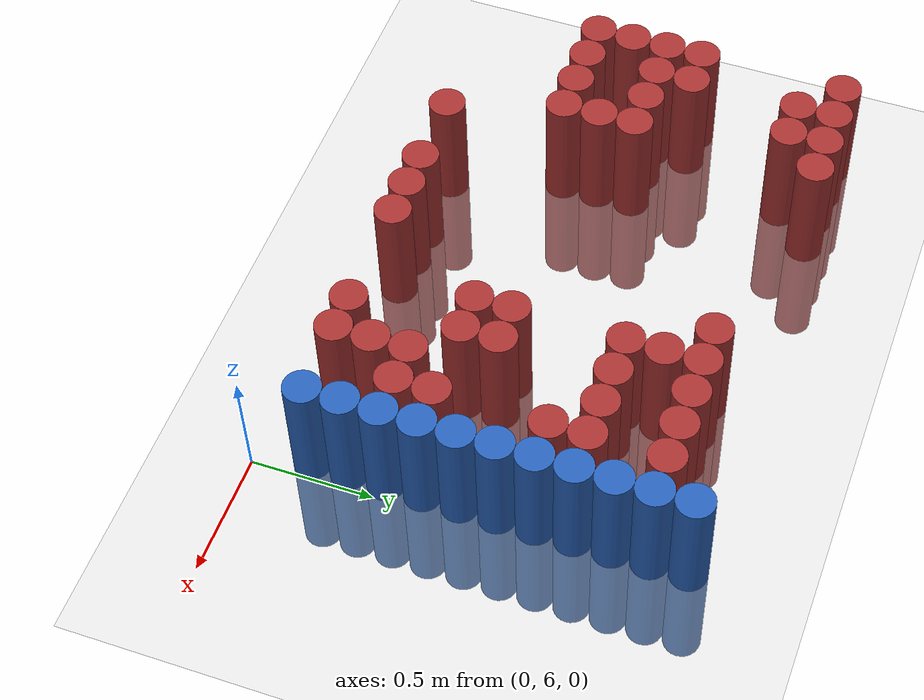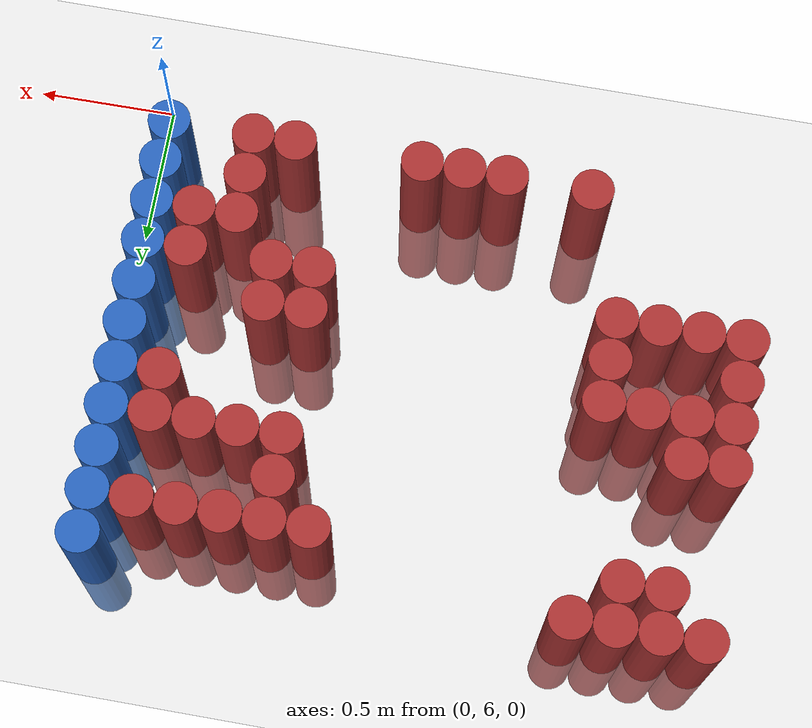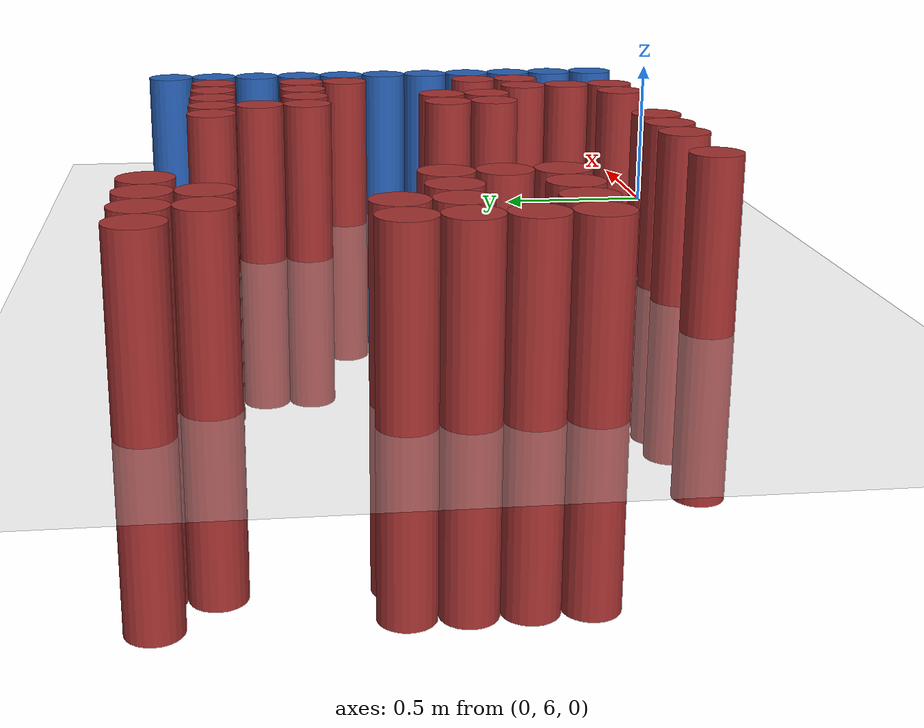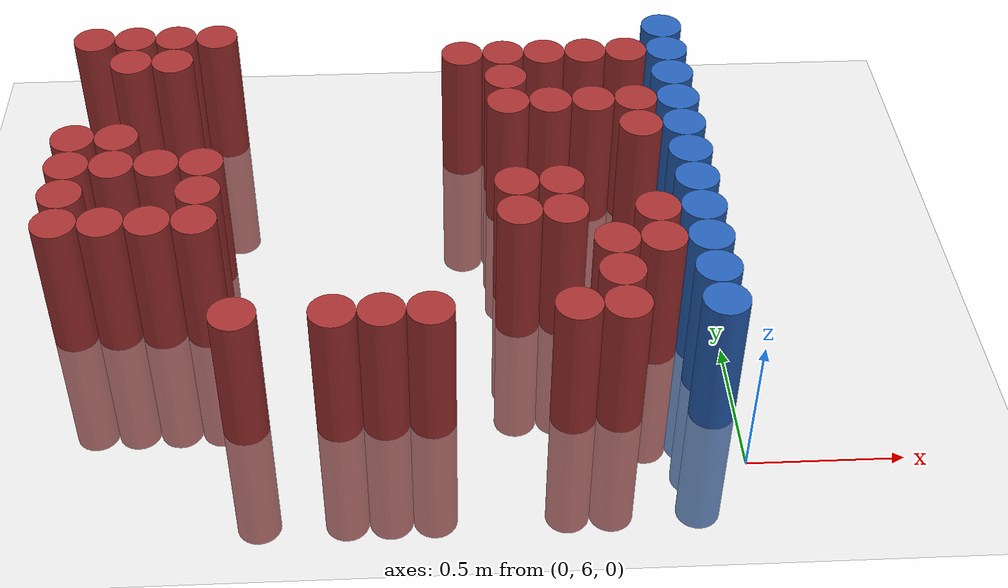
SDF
<sdf version="1.6">
 <world name="default">
  <model name="ground_plane">
   <static>1</static>
   <link name="link">
    <collision name="collision">
     <geometry><plane><normal>0 0 1</normal><size>100 100</size></plane></geometry>
     <surface><friction><ode><mu>100</mu><mu2>50</mu2></ode></friction></surface>
    </collision>
    <visual name="visual">
     <cast_shadows>0</cast_shadows>
     <geometry><plane><normal>0 0 1</normal><size>100 100</size></plane></geometry>
     <material>
      <script><uri>file://media/materials/scripts/gazebo.material</uri><name>Gazebo/Grey</name></script>
     </material>
    </visual>
   </link>
  </model>
  <model name="unit_cylinder_186">
   <static>1</static>
   <pose>-2.175000 6.675000 0.000000 0.000000 0.000000 0.000000</pose>
   <link name="link">
    <inertial>
     <mass>1</mass>
     <inertia><ixx>0.145833</ixx><ixy>0</ixy><ixz>0</ixz><iyy>0.145833</iyy><iyz>0</iyz><izz>0.125</izz></inertia>
    </inertial>
    <collision name="collision">
     <geometry><cylinder><radius>0.075000</radius><length>1</length></cylinder></geometry>
    </collision>
    <visual name="visual">
     <geometry><cylinder><radius>0.075000</radius><length>1</length></cylinder></geometry>
     <material>
      <ambient>0.648000 0.192000 0.192000 1</ambient>
      <diffuse>0.648000 0.192000 0.192000 1</diffuse>
     </material>
     <material>
      <script><name>Gazebo/Grey</name><uri>file://media/materials/scripts/gazebo.material</uri></script>
     </material>
    </visual>
   </link>
  </model>
  <model name="unit_cylinder_187">
   <static>1</static>
   <pose>-2.175000 6.825000 0.000000 0.000000 0.000000 0.000000</pose>
   <link name="link">
    <inertial>
     <mass>1</mass>
     <inertia><ixx>0.145833</ixx><ixy>0</ixy><ixz>0</ixz><iyy>0.145833</iyy><iyz>0</iyz><izz>0.125</izz></inertia>
    </inertial>
    <collision name="collision">
     <geometry><cylinder><radius>0.075000</radius><length>1</length></cylinder></geometry>
    </collision>
    <visual name="visual">
     <geometry><cylinder><radius>0.075000</radius><length>1</length></cylinder></geometry>
     <material>
      <ambient>0.648000 0.192000 0.192000 1</ambient>
      <diffuse>0.648000 0.192000 0.192000 1</diffuse>
     </material>
     <material>
      <script><name>Gazebo/Grey</name><uri>file://media/materials/scripts/gazebo.material</uri></script>
     </material>
    </visual>
   </link>
  </model>
  <model name="unit_cylinder_188">
   <static>1</static>
   <pose>-2.175000 6.975000 0.000000 0.000000 0.000000 0.000000</pose>
   <link name="link">
    <inertial>
     <mass>1</mass>
     <inertia><ixx>0.145833</ixx><ixy>0</ixy><ixz>0</ixz><iyy>0.145833</iyy><iyz>0</iyz><izz>0.125</izz></inertia>
    </inertial>
    <collision name="collision">
     <geometry><cylinder><radius>0.075000</radius><length>1</length></cylinder></geometry>
    </collision>
    <visual name="visual">
     <geometry><cylinder><radius>0.075000</radius><length>1</length></cylinder></geometry>
     <material>
      <ambient>0.648000 0.192000 0.192000 1</ambient>
      <diffuse>0.648000 0.192000 0.192000 1</diffuse>
     </material>
     <material>
      <script><name>Gazebo/Grey</name><uri>file://media/materials/scripts/gazebo.material</uri></script>
     </material>
    </visual>
   </link>
  </model>
  <model name="unit_cylinder_189">
   <static>1</static>
   <pose>-2.175000 7.125000 0.000000 0.000000 0.000000 0.000000</pose>
   <link name="link">
    <inertial>
     <mass>1</mass>
     <inertia><ixx>0.145833</ixx><ixy>0</ixy><ixz>0</ixz><iyy>0.145833</iyy><iyz>0</iyz><izz>0.125</izz></inertia>
    </inertial>
    <collision name="collision">
     <geometry><cylinder><radius>0.075000</radius><length>1</length></cylinder></geometry>
    </collision>
    <visual name="visual">
     <geometry><cylinder><radius>0.075000</radius><length>1</length></cylinder></geometry>
     <material>
      <ambient>0.648000 0.192000 0.192000 1</ambient>
      <diffuse>0.648000 0.192000 0.192000 1</diffuse>
     </material>
     <material>
      <script><name>Gazebo/Grey</name><uri>file://media/materials/scripts/gazebo.material</uri></script>
     </material>
    </visual>
   </link>
  </model>
  <model name="unit_cylinder_190">
   <static>1</static>
   <pose>-2.175000 7.725000 0.000000 0.000000 0.000000 0.000000</pose>
   <link name="link">
    <inertial>
     <mass>1</mass>
     <inertia><ixx>0.145833</ixx><ixy>0</ixy><ixz>0</ixz><iyy>0.145833</iyy><iyz>0</iyz><izz>0.125</izz></inertia>
    </inertial>
    <collision name="collision">
     <geometry><cylinder><radius>0.075000</radius><length>1</length></cylinder></geometry>
    </collision>
    <visual name="visual">
     <geometry><cylinder><radius>0.075000</radius><length>1</length></cylinder></geometry>
     <material>
      <ambient>0.648000 0.192000 0.192000 1</ambient>
      <diffuse>0.648000 0.192000 0.192000 1</diffuse>
     </material>
     <material>
      <script><name>Gazebo/Grey</name><uri>file://media/materials/scripts/gazebo.material</uri></script>
     </material>
    </visual>
   </link>
  </model>
  <model name="unit_cylinder_194">
   <static>1</static>
   <pose>-2.025000 6.675000 0.000000 0.000000 0.000000 0.000000</pose>
   <link name="link">
    <inertial>
     <mass>1</mass>
     <inertia><ixx>0.145833</ixx><ixy>0</ixy><ixz>0</ixz><iyy>0.145833</iyy><iyz>0</iyz><izz>0.125</izz></inertia>
    </inertial>
    <collision name="collision">
     <geometry><cylinder><radius>0.075000</radius><length>1</length></cylinder></geometry>
    </collision>
    <visual name="visual">
     <geometry><cylinder><radius>0.075000</radius><length>1</length></cylinder></geometry>
     <material>
      <ambient>0.648000 0.192000 0.192000 1</ambient>
      <diffuse>0.648000 0.192000 0.192000 1</diffuse>
     </material>
     <material>
      <script><name>Gazebo/Grey</name><uri>file://media/materials/scripts/gazebo.material</uri></script>
     </material>
    </visual>
   </link>
  </model>
  <model name="unit_cylinder_195">
   <static>1</static>
   <pose>-2.025000 6.975000 0.000000 0.000000 0.000000 0.000000</pose>
   <link name="link">
    <inertial>
     <mass>1</mass>
     <inertia><ixx>0.145833</ixx><ixy>0</ixy><ixz>0</ixz><iyy>0.145833</iyy><iyz>0</iyz><izz>0.125</izz></inertia>
    </inertial>
    <collision name="collision">
     <geometry><cylinder><radius>0.075000</radius><length>1</length></cylinder></geometry>
    </collision>
    <visual name="visual">
     <geometry><cylinder><radius>0.075000</radius><length>1</length></cylinder></geometry>
     <material>
      <ambient>0.648000 0.192000 0.192000 1</ambient>
      <diffuse>0.648000 0.192000 0.192000 1</diffuse>
     </material>
     <material>
      <script><name>Gazebo/Grey</name><uri>file://media/materials/scripts/gazebo.material</uri></script>
     </material>
    </visual>
   </link>
  </model>
  <model name="unit_cylinder_196">
   <static>1</static>
   <pose>-2.025000 7.125000 0.000000 0.000000 0.000000 0.000000</pose>
   <link name="link">
    <inertial>
     <mass>1</mass>
     <inertia><ixx>0.145833</ixx><ixy>0</ixy><ixz>0</ixz><iyy>0.145833</iyy><iyz>0</iyz><izz>0.125</izz></inertia>
    </inertial>
    <collision name="collision">
     <geometry><cylinder><radius>0.075000</radius><length>1</length></cylinder></geometry>
    </collision>
    <visual name="visual">
     <geometry><cylinder><radius>0.075000</radius><length>1</length></cylinder></geometry>
     <material>
      <ambient>0.648000 0.192000 0.192000 1</ambient>
      <diffuse>0.648000 0.192000 0.192000 1</diffuse>
     </material>
     <material>
      <script><name>Gazebo/Grey</name><uri>file://media/materials/scripts/gazebo.material</uri></script>
     </material>
    </visual>
   </link>
  </model>
  <model name="unit_cylinder_197">
   <static>1</static>
   <pose>-2.025000 7.575000 0.000000 0.000000 0.000000 0.000000</pose>
   <link name="link">
    <inertial>
     <mass>1</mass>
     <inertia><ixx>0.145833</ixx><ixy>0</ixy><ixz>0</ixz><iyy>0.145833</iyy><iyz>0</iyz><izz>0.125</izz></inertia>
    </inertial>
    <collision name="collision">
     <geometry><cylinder><radius>0.075000</radius><length>1</length></cylinder></geometry>
    </collision>
    <visual name="visual">
     <geometry><cylinder><radius>0.075000</radius><length>1</length></cylinder></geometry>
     <material>
      <ambient>0.648000 0.192000 0.192000 1</ambient>
      <diffuse>0.648000 0.192000 0.192000 1</diffuse>
     </material>
     <material>
      <script><name>Gazebo/Grey</name><uri>file://media/materials/scripts/gazebo.material</uri></script>
     </material>
    </visual>
   </link>
  </model>
  <model name="unit_cylinder_198">
   <static>1</static>
   <pose>-2.025000 7.725000 0.000000 0.000000 0.000000 0.000000</pose>
   <link name="link">
    <inertial>
     <mass>1</mass>
     <inertia><ixx>0.145833</ixx><ixy>0</ixy><ixz>0</ixz><iyy>0.145833</iyy><iyz>0</iyz><izz>0.125</izz></inertia>
    </inertial>
    <collision name="collision">
     <geometry><cylinder><radius>0.075000</radius><length>1</length></cylinder></geometry>
    </collision>
    <visual name="visual">
     <geometry><cylinder><radius>0.075000</radius><length>1</length></cylinder></geometry>
     <material>
      <ambient>0.648000 0.192000 0.192000 1</ambient>
      <diffuse>0.648000 0.192000 0.192000 1</diffuse>
     </material>
     <material>
      <script><name>Gazebo/Grey</name><uri>file://media/materials/scripts/gazebo.material</uri></script>
     </material>
    </visual>
   </link>
  </model>
  <model name="unit_cylinder_203">
   <static>1</static>
   <pose>-1.875000 6.675000 0.000000 0.000000 0.000000 0.000000</pose>
   <link name="link">
    <inertial>
     <mass>1</mass>
     <inertia><ixx>0.145833</ixx><ixy>0</ixy><ixz>0</ixz><iyy>0.145833</iyy><iyz>0</iyz><izz>0.125</izz></inertia>
    </inertial>
    <collision name="collision">
     <geometry><cylinder><radius>0.075000</radius><length>1</length></cylinder></geometry>
    </collision>
    <visual name="visual">
     <geometry><cylinder><radius>0.075000</radius><length>1</length></cylinder></geometry>
     <material>
      <ambient>0.648000 0.192000 0.192000 1</ambient>
      <diffuse>0.648000 0.192000 0.192000 1</diffuse>
     </material>
     <material>
      <script><name>Gazebo/Grey</name><uri>file://media/materials/scripts/gazebo.material</uri></script>
     </material>
    </visual>
   </link>
  </model>
  <model name="unit_cylinder_204">
   <static>1</static>
   <pose>-1.875000 6.975000 0.000000 0.000000 0.000000 0.000000</pose>
   <link name="link">
    <inertial>
     <mass>1</mass>
     <inertia><ixx>0.145833</ixx><ixy>0</ixy><ixz>0</ixz><iyy>0.145833</iyy><iyz>0</iyz><izz>0.125</izz></inertia>
    </inertial>
    <collision name="collision">
     <geometry><cylinder><radius>0.075000</radius><length>1</length></cylinder></geometry>
    </collision>
    <visual name="visual">
     <geometry><cylinder><radius>0.075000</radius><length>1</length></cylinder></geometry>
     <material>
      <ambient>0.648000 0.192000 0.192000 1</ambient>
      <diffuse>0.648000 0.192000 0.192000 1</diffuse>
     </material>
     <material>
      <script><name>Gazebo/Grey</name><uri>file://media/materials/scripts/gazebo.material</uri></script>
     </material>
    </visual>
   </link>
  </model>
  <model name="unit_cylinder_205">
   <static>1</static>
   <pose>-1.875000 7.575000 0.000000 0.000000 0.000000 0.000000</pose>
   <link name="link">
    <inertial>
     <mass>1</mass>
     <inertia><ixx>0.145833</ixx><ixy>0</ixy><ixz>0</ixz><iyy>0.145833</iyy><iyz>0</iyz><izz>0.125</izz></inertia>
    </inertial>
    <collision name="collision">
     <geometry><cylinder><radius>0.075000</radius><length>1</length></cylinder></geometry>
    </collision>
    <visual name="visual">
     <geometry><cylinder><radius>0.075000</radius><length>1</length></cylinder></geometry>
     <material>
      <ambient>0.648000 0.192000 0.192000 1</ambient>
      <diffuse>0.648000 0.192000 0.192000 1</diffuse>
     </material>
     <material>
      <script><name>Gazebo/Grey</name><uri>file://media/materials/scripts/gazebo.material</uri></script>
     </material>
    </visual>
   </link>
  </model>
  <model name="unit_cylinder_206">
   <static>1</static>
   <pose>-1.875000 7.725000 0.000000 0.000000 0.000000 0.000000</pose>
   <link name="link">
    <inertial>
     <mass>1</mass>
     <inertia><ixx>0.145833</ixx><ixy>0</ixy><ixz>0</ixz><iyy>0.145833</iyy><iyz>0</iyz><izz>0.125</izz></inertia>
    </inertial>
    <collision name="collision">
     <geometry><cylinder><radius>0.075000</radius><length>1</length></cylinder></geometry>
    </collision>
    <visual name="visual">
     <geometry><cylinder><radius>0.075000</radius><length>1</length></cylinder></geometry>
     <material>
      <ambient>0.648000 0.192000 0.192000 1</ambient>
      <diffuse>0.648000 0.192000 0.192000 1</diffuse>
     </material>
     <material>
      <script><name>Gazebo/Grey</name><uri>file://media/materials/scripts/gazebo.material</uri></script>
     </material>
    </visual>
   </link>
  </model>
  <model name="unit_cylinder_212">
   <static>1</static>
   <pose>-1.725000 6.675000 0.000000 0.000000 0.000000 0.000000</pose>
   <link name="link">
    <inertial>
     <mass>1</mass>
     <inertia><ixx>0.145833</ixx><ixy>0</ixy><ixz>0</ixz><iyy>0.145833</iyy><iyz>0</iyz><izz>0.125</izz></inertia>
    </inertial>
    <collision name="collision">
     <geometry><cylinder><radius>0.075000</radius><length>1</length></cylinder></geometry>
    </collision>
    <visual name="visual">
     <geometry><cylinder><radius>0.075000</radius><length>1</length></cylinder></geometry>
     <material>
      <ambient>0.648000 0.192000 0.192000 1</ambient>
      <diffuse>0.648000 0.192000 0.192000 1</diffuse>
     </material>
     <material>
      <script><name>Gazebo/Grey</name><uri>file://media/materials/scripts/gazebo.material</uri></script>
     </material>
    </visual>
   </link>
  </model>
  <model name="unit_cylinder_213">
   <static>1</static>
   <pose>-1.725000 6.825000 0.000000 0.000000 0.000000 0.000000</pose>
   <link name="link">
    <inertial>
     <mass>1</mass>
     <inertia><ixx>0.145833</ixx><ixy>0</ixy><ixz>0</ixz><iyy>0.145833</iyy><iyz>0</iyz><izz>0.125</izz></inertia>
    </inertial>
    <collision name="collision">
     <geometry><cylinder><radius>0.075000</radius><length>1</length></cylinder></geometry>
    </collision>
    <visual name="visual">
     <geometry><cylinder><radius>0.075000</radius><length>1</length></cylinder></geometry>
     <material>
      <ambient>0.648000 0.192000 0.192000 1</ambient>
      <diffuse>0.648000 0.192000 0.192000 1</diffuse>
     </material>
     <material>
      <script><name>Gazebo/Grey</name><uri>file://media/materials/scripts/gazebo.material</uri></script>
     </material>
    </visual>
   </link>
  </model>
  <model name="unit_cylinder_214">
   <static>1</static>
   <pose>-1.725000 6.975000 0.000000 0.000000 0.000000 0.000000</pose>
   <link name="link">
    <inertial>
     <mass>1</mass>
     <inertia><ixx>0.145833</ixx><ixy>0</ixy><ixz>0</ixz><iyy>0.145833</iyy><iyz>0</iyz><izz>0.125</izz></inertia>
    </inertial>
    <collision name="collision">
     <geometry><cylinder><radius>0.075000</radius><length>1</length></cylinder></geometry>
    </collision>
    <visual name="visual">
     <geometry><cylinder><radius>0.075000</radius><length>1</length></cylinder></geometry>
     <material>
      <ambient>0.648000 0.192000 0.192000 1</ambient>
      <diffuse>0.648000 0.192000 0.192000 1</diffuse>
     </material>
     <material>
      <script><name>Gazebo/Grey</name><uri>file://media/materials/scripts/gazebo.material</uri></script>
     </material>
    </visual>
   </link>
  </model>
  <model name="unit_cylinder_215">
   <static>1</static>
   <pose>-1.725000 7.725000 0.000000 0.000000 0.000000 0.000000</pose>
   <link name="link">
    <inertial>
     <mass>1</mass>
     <inertia><ixx>0.145833</ixx><ixy>0</ixy><ixz>0</ixz><iyy>0.145833</iyy><iyz>0</iyz><izz>0.125</izz></inertia>
    </inertial>
    <collision name="collision">
     <geometry><cylinder><radius>0.075000</radius><length>1</length></cylinder></geometry>
    </collision>
    <visual name="visual">
     <geometry><cylinder><radius>0.075000</radius><length>1</length></cylinder></geometry>
     <material>
      <ambient>0.648000 0.192000 0.192000 1</ambient>
      <diffuse>0.648000 0.192000 0.192000 1</diffuse>
     </material>
     <material>
      <script><name>Gazebo/Grey</name><uri>file://media/materials/scripts/gazebo.material</uri></script>
     </material>
    </visual>
   </link>
  </model>
  <model name="unit_cylinder_219">
   <static>1</static>
   <pose>-1.575000 6.225000 0.000000 0.000000 0.000000 0.000000</pose>
   <link name="link">
    <inertial>
     <mass>1</mass>
     <inertia><ixx>0.145833</ixx><ixy>0</ixy><ixz>0</ixz><iyy>0.145833</iyy><iyz>0</iyz><izz>0.125</izz></inertia>
    </inertial>
    <collision name="collision">
     <geometry><cylinder><radius>0.075000</radius><length>1</length></cylinder></geometry>
    </collision>
    <visual name="visual">
     <geometry><cylinder><radius>0.075000</radius><length>1</length></cylinder></geometry>
     <material>
      <ambient>0.648000 0.192000 0.192000 1</ambient>
      <diffuse>0.648000 0.192000 0.192000 1</diffuse>
     </material>
     <material>
      <script><name>Gazebo/Grey</name><uri>file://media/materials/scripts/gazebo.material</uri></script>
     </material>
    </visual>
   </link>
  </model>
  <model name="unit_cylinder_225">
   <static>1</static>
   <pose>-1.275000 6.225000 0.000000 0.000000 0.000000 0.000000</pose>
   <link name="link">
    <inertial>
     <mass>1</mass>
     <inertia><ixx>0.145833</ixx><ixy>0</ixy><ixz>0</ixz><iyy>0.145833</iyy><iyz>0</iyz><izz>0.125</izz></inertia>
    </inertial>
    <collision name="collision">
     <geometry><cylinder><radius>0.075000</radius><length>1</length></cylinder></geometry>
    </collision>
    <visual name="visual">
     <geometry><cylinder><radius>0.075000</radius><length>1</length></cylinder></geometry>
     <material>
      <ambient>0.648000 0.192000 0.192000 1</ambient>
      <diffuse>0.648000 0.192000 0.192000 1</diffuse>
     </material>
     <material>
      <script><name>Gazebo/Grey</name><uri>file://media/materials/scripts/gazebo.material</uri></script>
     </material>
    </visual>
   </link>
  </model>
  <model name="unit_cylinder_229">
   <static>1</static>
   <pose>-1.125000 6.225000 0.000000 0.000000 0.000000 0.000000</pose>
   <link name="link">
    <inertial>
     <mass>1</mass>
     <inertia><ixx>0.145833</ixx><ixy>0</ixy><ixz>0</ixz><iyy>0.145833</iyy><iyz>0</iyz><izz>0.125</izz></inertia>
    </inertial>
    <collision name="collision">
     <geometry><cylinder><radius>0.075000</radius><length>1</length></cylinder></geometry>
    </collision>
    <visual name="visual">
     <geometry><cylinder><radius>0.075000</radius><length>1</length></cylinder></geometry>
     <material>
      <ambient>0.648000 0.192000 0.192000 1</ambient>
      <diffuse>0.648000 0.192000 0.192000 1</diffuse>
     </material>
     <material>
      <script><name>Gazebo/Grey</name><uri>file://media/materials/scripts/gazebo.material</uri></script>
     </material>
    </visual>
   </link>
  </model>
  <model name="unit_cylinder_232">
   <static>1</static>
   <pose>-0.975000 6.225000 0.000000 0.000000 0.000000 0.000000</pose>
   <link name="link">
    <inertial>
     <mass>1</mass>
     <inertia><ixx>0.145833</ixx><ixy>0</ixy><ixz>0</ixz><iyy>0.145833</iyy><iyz>0</iyz><izz>0.125</izz></inertia>
    </inertial>
    <collision name="collision">
     <geometry><cylinder><radius>0.075000</radius><length>1</length></cylinder></geometry>
    </collision>
    <visual name="visual">
     <geometry><cylinder><radius>0.075000</radius><length>1</length></cylinder></geometry>
     <material>
      <ambient>0.648000 0.192000 0.192000 1</ambient>
      <diffuse>0.648000 0.192000 0.192000 1</diffuse>
     </material>
     <material>
      <script><name>Gazebo/Grey</name><uri>file://media/materials/scripts/gazebo.material</uri></script>
     </material>
    </visual>
   </link>
  </model>
  <model name="unit_cylinder_238">
   <static>1</static>
   <pose>-0.825000 7.575000 0.000000 0.000000 0.000000 0.000000</pose>
   <link name="link">
    <inertial>
     <mass>1</mass>
     <inertia><ixx>0.145833</ixx><ixy>0</ixy><ixz>0</ixz><iyy>0.145833</iyy><iyz>0</iyz><izz>0.125</izz></inertia>
    </inertial>
    <collision name="collision">
     <geometry><cylinder><radius>0.075000</radius><length>1</length></cylinder></geometry>
    </collision>
    <visual name="visual">
     <geometry><cylinder><radius>0.075000</radius><length>1</length></cylinder></geometry>
     <material>
      <ambient>0.648000 0.192000 0.192000 1</ambient>
      <diffuse>0.648000 0.192000 0.192000 1</diffuse>
     </material>
     <material>
      <script><name>Gazebo/Grey</name><uri>file://media/materials/scripts/gazebo.material</uri></script>
     </material>
    </visual>
   </link>
  </model>
  <model name="unit_cylinder_245">
   <static>1</static>
   <pose>-0.675000 6.675000 0.000000 0.000000 0.000000 0.000000</pose>
   <link name="link">
    <inertial>
     <mass>1</mass>
     <inertia><ixx>0.145833</ixx><ixy>0</ixy><ixz>0</ixz><iyy>0.145833</iyy><iyz>0</iyz><izz>0.125</izz></inertia>
    </inertial>
    <collision name="collision">
     <geometry><cylinder><radius>0.075000</radius><length>1</length></cylinder></geometry>
    </collision>
    <visual name="visual">
     <geometry><cylinder><radius>0.075000</radius><length>1</length></cylinder></geometry>
     <material>
      <ambient>0.648000 0.192000 0.192000 1</ambient>
      <diffuse>0.648000 0.192000 0.192000 1</diffuse>
     </material>
     <material>
      <script><name>Gazebo/Grey</name><uri>file://media/materials/scripts/gazebo.material</uri></script>
     </material>
    </visual>
   </link>
  </model>
  <model name="unit_cylinder_246">
   <static>1</static>
   <pose>-0.675000 6.825000 0.000000 0.000000 0.000000 0.000000</pose>
   <link name="link">
    <inertial>
     <mass>1</mass>
     <inertia><ixx>0.145833</ixx><ixy>0</ixy><ixz>0</ixz><iyy>0.145833</iyy><iyz>0</iyz><izz>0.125</izz></inertia>
    </inertial>
    <collision name="collision">
     <geometry><cylinder><radius>0.075000</radius><length>1</length></cylinder></geometry>
    </collision>
    <visual name="visual">
     <geometry><cylinder><radius>0.075000</radius><length>1</length></cylinder></geometry>
     <material>
      <ambient>0.648000 0.192000 0.192000 1</ambient>
      <diffuse>0.648000 0.192000 0.192000 1</diffuse>
     </material>
     <material>
      <script><name>Gazebo/Grey</name><uri>file://media/materials/scripts/gazebo.material</uri></script>
     </material>
    </visual>
   </link>
  </model>
  <model name="unit_cylinder_247">
   <static>1</static>
   <pose>-0.675000 7.275000 0.000000 0.000000 0.000000 0.000000</pose>
   <link name="link">
    <inertial>
     <mass>1</mass>
     <inertia><ixx>0.145833</ixx><ixy>0</ixy><ixz>0</ixz><iyy>0.145833</iyy><iyz>0</iyz><izz>0.125</izz></inertia>
    </inertial>
    <collision name="collision">
     <geometry><cylinder><radius>0.075000</radius><length>1</length></cylinder></geometry>
    </collision>
    <visual name="visual">
     <geometry><cylinder><radius>0.075000</radius><length>1</length></cylinder></geometry>
     <material>
      <ambient>0.648000 0.192000 0.192000 1</ambient>
      <diffuse>0.648000 0.192000 0.192000 1</diffuse>
     </material>
     <material>
      <script><name>Gazebo/Grey</name><uri>file://media/materials/scripts/gazebo.material</uri></script>
     </material>
    </visual>
   </link>
  </model>
  <model name="unit_cylinder_248">
   <static>1</static>
   <pose>-0.675000 7.425000 0.000000 0.000000 0.000000 0.000000</pose>
   <link name="link">
    <inertial>
     <mass>1</mass>
     <inertia><ixx>0.145833</ixx><ixy>0</ixy><ixz>0</ixz><iyy>0.145833</iyy><iyz>0</iyz><izz>0.125</izz></inertia>
    </inertial>
    <collision name="collision">
     <geometry><cylinder><radius>0.075000</radius><length>1</length></cylinder></geometry>
    </collision>
    <visual name="visual">
     <geometry><cylinder><radius>0.075000</radius><length>1</length></cylinder></geometry>
     <material>
      <ambient>0.648000 0.192000 0.192000 1</ambient>
      <diffuse>0.648000 0.192000 0.192000 1</diffuse>
     </material>
     <material>
      <script><name>Gazebo/Grey</name><uri>file://media/materials/scripts/gazebo.material</uri></script>
     </material>
    </visual>
   </link>
  </model>
  <model name="unit_cylinder_249">
   <static>1</static>
   <pose>-0.675000 7.575000 0.000000 0.000000 0.000000 0.000000</pose>
   <link name="link">
    <inertial>
     <mass>1</mass>
     <inertia><ixx>0.145833</ixx><ixy>0</ixy><ixz>0</ixz><iyy>0.145833</iyy><iyz>0</iyz><izz>0.125</izz></inertia>
    </inertial>
    <collision name="collision">
     <geometry><cylinder><radius>0.075000</radius><length>1</length></cylinder></geometry>
    </collision>
    <visual name="visual">
     <geometry><cylinder><radius>0.075000</radius><length>1</length></cylinder></geometry>
     <material>
      <ambient>0.648000 0.192000 0.192000 1</ambient>
      <diffuse>0.648000 0.192000 0.192000 1</diffuse>
     </material>
     <material>
      <script><name>Gazebo/Grey</name><uri>file://media/materials/scripts/gazebo.material</uri></script>
     </material>
    </visual>
   </link>
  </model>
  <model name="unit_cylinder_258">
   <static>1</static>
   <pose>-0.525000 6.225000 0.000000 0.000000 0.000000 0.000000</pose>
   <link name="link">
    <inertial>
     <mass>1</mass>
     <inertia><ixx>0.145833</ixx><ixy>0</ixy><ixz>0</ixz><iyy>0.145833</iyy><iyz>0</iyz><izz>0.125</izz></inertia>
    </inertial>
    <collision name="collision">
     <geometry><cylinder><radius>0.075000</radius><length>1</length></cylinder></geometry>
    </collision>
    <visual name="visual">
     <geometry><cylinder><radius>0.075000</radius><length>1</length></cylinder></geometry>
     <material>
      <ambient>0.648000 0.192000 0.192000 1</ambient>
      <diffuse>0.648000 0.192000 0.192000 1</diffuse>
     </material>
     <material>
      <script><name>Gazebo/Grey</name><uri>file://media/materials/scripts/gazebo.material</uri></script>
     </material>
    </visual>
   </link>
  </model>
  <model name="unit_cylinder_259">
   <static>1</static>
   <pose>-0.525000 6.675000 0.000000 0.000000 0.000000 0.000000</pose>
   <link name="link">
    <inertial>
     <mass>1</mass>
     <inertia><ixx>0.145833</ixx><ixy>0</ixy><ixz>0</ixz><iyy>0.145833</iyy><iyz>0</iyz><izz>0.125</izz></inertia>
    </inertial>
    <collision name="collision">
     <geometry><cylinder><radius>0.075000</radius><length>1</length></cylinder></geometry>
    </collision>
    <visual name="visual">
     <geometry><cylinder><radius>0.075000</radius><length>1</length></cylinder></geometry>
     <material>
      <ambient>0.648000 0.192000 0.192000 1</ambient>
      <diffuse>0.648000 0.192000 0.192000 1</diffuse>
     </material>
     <material>
      <script><name>Gazebo/Grey</name><uri>file://media/materials/scripts/gazebo.material</uri></script>
     </material>
    </visual>
   </link>
  </model>
  <model name="unit_cylinder_260">
   <static>1</static>
   <pose>-0.525000 6.825000 0.000000 0.000000 0.000000 0.000000</pose>
   <link name="link">
    <inertial>
     <mass>1</mass>
     <inertia><ixx>0.145833</ixx><ixy>0</ixy><ixz>0</ixz><iyy>0.145833</iyy><iyz>0</iyz><izz>0.125</izz></inertia>
    </inertial>
    <collision name="collision">
     <geometry><cylinder><radius>0.075000</radius><length>1</length></cylinder></geometry>
    </collision>
    <visual name="visual">
     <geometry><cylinder><radius>0.075000</radius><length>1</length></cylinder></geometry>
     <material>
      <ambient>0.648000 0.192000 0.192000 1</ambient>
      <diffuse>0.648000 0.192000 0.192000 1</diffuse>
     </material>
     <material>
      <script><name>Gazebo/Grey</name><uri>file://media/materials/scripts/gazebo.material</uri></script>
     </material>
    </visual>
   </link>
  </model>
  <model name="unit_cylinder_261">
   <static>1</static>
   <pose>-0.525000 7.275000 0.000000 0.000000 0.000000 0.000000</pose>
   <link name="link">
    <inertial>
     <mass>1</mass>
     <inertia><ixx>0.145833</ixx><ixy>0</ixy><ixz>0</ixz><iyy>0.145833</iyy><iyz>0</iyz><izz>0.125</izz></inertia>
    </inertial>
    <collision name="collision">
     <geometry><cylinder><radius>0.075000</radius><length>1</length></cylinder></geometry>
    </collision>
    <visual name="visual">
     <geometry><cylinder><radius>0.075000</radius><length>1</length></cylinder></geometry>
     <material>
      <ambient>0.648000 0.192000 0.192000 1</ambient>
      <diffuse>0.648000 0.192000 0.192000 1</diffuse>
     </material>
     <material>
      <script><name>Gazebo/Grey</name><uri>file://media/materials/scripts/gazebo.material</uri></script>
     </material>
    </visual>
   </link>
  </model>
  <model name="unit_cylinder_262">
   <static>1</static>
   <pose>-0.525000 7.575000 0.000000 0.000000 0.000000 0.000000</pose>
   <link name="link">
    <inertial>
     <mass>1</mass>
     <inertia><ixx>0.145833</ixx><ixy>0</ixy><ixz>0</ixz><iyy>0.145833</iyy><iyz>0</iyz><izz>0.125</izz></inertia>
    </inertial>
    <collision name="collision">
     <geometry><cylinder><radius>0.075000</radius><length>1</length></cylinder></geometry>
    </collision>
    <visual name="visual">
     <geometry><cylinder><radius>0.075000</radius><length>1</length></cylinder></geometry>
     <material>
      <ambient>0.648000 0.192000 0.192000 1</ambient>
      <diffuse>0.648000 0.192000 0.192000 1</diffuse>
     </material>
     <material>
      <script><name>Gazebo/Grey</name><uri>file://media/materials/scripts/gazebo.material</uri></script>
     </material>
    </visual>
   </link>
  </model>
  <model name="unit_cylinder_272">
   <static>1</static>
   <pose>-0.375000 6.225000 0.000000 0.000000 0.000000 0.000000</pose>
   <link name="link">
    <inertial>
     <mass>1</mass>
     <inertia><ixx>0.145833</ixx><ixy>0</ixy><ixz>0</ixz><iyy>0.145833</iyy><iyz>0</iyz><izz>0.125</izz></inertia>
    </inertial>
    <collision name="collision">
     <geometry><cylinder><radius>0.075000</radius><length>1</length></cylinder></geometry>
    </collision>
    <visual name="visual">
     <geometry><cylinder><radius>0.075000</radius><length>1</length></cylinder></geometry>
     <material>
      <ambient>0.648000 0.192000 0.192000 1</ambient>
      <diffuse>0.648000 0.192000 0.192000 1</diffuse>
     </material>
     <material>
      <script><name>Gazebo/Grey</name><uri>file://media/materials/scripts/gazebo.material</uri></script>
     </material>
    </visual>
   </link>
  </model>
  <model name="unit_cylinder_273">
   <static>1</static>
   <pose>-0.375000 6.375000 0.000000 0.000000 0.000000 0.000000</pose>
   <link name="link">
    <inertial>
     <mass>1</mass>
     <inertia><ixx>0.145833</ixx><ixy>0</ixy><ixz>0</ixz><iyy>0.145833</iyy><iyz>0</iyz><izz>0.125</izz></inertia>
    </inertial>
    <collision name="collision">
     <geometry><cylinder><radius>0.075000</radius><length>1</length></cylinder></geometry>
    </collision>
    <visual name="visual">
     <geometry><cylinder><radius>0.075000</radius><length>1</length></cylinder></geometry>
     <material>
      <ambient>0.648000 0.192000 0.192000 1</ambient>
      <diffuse>0.648000 0.192000 0.192000 1</diffuse>
     </material>
     <material>
      <script><name>Gazebo/Grey</name><uri>file://media/materials/scripts/gazebo.material</uri></script>
     </material>
    </visual>
   </link>
  </model>
  <model name="unit_cylinder_274">
   <static>1</static>
   <pose>-0.375000 6.525000 0.000000 0.000000 0.000000 0.000000</pose>
   <link name="link">
    <inertial>
     <mass>1</mass>
     <inertia><ixx>0.145833</ixx><ixy>0</ixy><ixz>0</ixz><iyy>0.145833</iyy><iyz>0</iyz><izz>0.125</izz></inertia>
    </inertial>
    <collision name="collision">
     <geometry><cylinder><radius>0.075000</radius><length>1</length></cylinder></geometry>
    </collision>
    <visual name="visual">
     <geometry><cylinder><radius>0.075000</radius><length>1</length></cylinder></geometry>
     <material>
      <ambient>0.648000 0.192000 0.192000 1</ambient>
      <diffuse>0.648000 0.192000 0.192000 1</diffuse>
     </material>
     <material>
      <script><name>Gazebo/Grey</name><uri>file://media/materials/scripts/gazebo.material</uri></script>
     </material>
    </visual>
   </link>
  </model>
  <model name="unit_cylinder_275">
   <static>1</static>
   <pose>-0.375000 7.275000 0.000000 0.000000 0.000000 0.000000</pose>
   <link name="link">
    <inertial>
     <mass>1</mass>
     <inertia><ixx>0.145833</ixx><ixy>0</ixy><ixz>0</ixz><iyy>0.145833</iyy><iyz>0</iyz><izz>0.125</izz></inertia>
    </inertial>
    <collision name="collision">
     <geometry><cylinder><radius>0.075000</radius><length>1</length></cylinder></geometry>
    </collision>
    <visual name="visual">
     <geometry><cylinder><radius>0.075000</radius><length>1</length></cylinder></geometry>
     <material>
      <ambient>0.648000 0.192000 0.192000 1</ambient>
      <diffuse>0.648000 0.192000 0.192000 1</diffuse>
     </material>
     <material>
      <script><name>Gazebo/Grey</name><uri>file://media/materials/scripts/gazebo.material</uri></script>
     </material>
    </visual>
   </link>
  </model>
  <model name="unit_cylinder_276">
   <static>1</static>
   <pose>-0.375000 7.575000 0.000000 0.000000 0.000000 0.000000</pose>
   <link name="link">
    <inertial>
     <mass>1</mass>
     <inertia><ixx>0.145833</ixx><ixy>0</ixy><ixz>0</ixz><iyy>0.145833</iyy><iyz>0</iyz><izz>0.125</izz></inertia>
    </inertial>
    <collision name="collision">
     <geometry><cylinder><radius>0.075000</radius><length>1</length></cylinder></geometry>
    </collision>
    <visual name="visual">
     <geometry><cylinder><radius>0.075000</radius><length>1</length></cylinder></geometry>
     <material>
      <ambient>0.648000 0.192000 0.192000 1</ambient>
      <diffuse>0.648000 0.192000 0.192000 1</diffuse>
     </material>
     <material>
      <script><name>Gazebo/Grey</name><uri>file://media/materials/scripts/gazebo.material</uri></script>
     </material>
    </visual>
   </link>
  </model>
  <model name="unit_cylinder_284">
   <static>1</static>
   <pose>-0.225000 6.525000 0.000000 0.000000 0.000000 0.000000</pose>
   <link name="link">
    <inertial>
     <mass>1</mass>
     <inertia><ixx>0.145833</ixx><ixy>0</ixy><ixz>0</ixz><iyy>0.145833</iyy><iyz>0</iyz><izz>0.125</izz></inertia>
    </inertial>
    <collision name="collision">
     <geometry><cylinder><radius>0.075000</radius><length>1</length></cylinder></geometry>
    </collision>
    <visual name="visual">
     <geometry><cylinder><radius>0.075000</radius><length>1</length></cylinder></geometry>
     <material>
      <ambient>0.648000 0.192000 0.192000 1</ambient>
      <diffuse>0.648000 0.192000 0.192000 1</diffuse>
     </material>
     <material>
      <script><name>Gazebo/Grey</name><uri>file://media/materials/scripts/gazebo.material</uri></script>
     </material>
    </visual>
   </link>
  </model>
  <model name="unit_cylinder_285">
   <static>1</static>
   <pose>-0.225000 6.675000 0.000000 0.000000 0.000000 0.000000</pose>
   <link name="link">
    <inertial>
     <mass>1</mass>
     <inertia><ixx>0.145833</ixx><ixy>0</ixy><ixz>0</ixz><iyy>0.145833</iyy><iyz>0</iyz><izz>0.125</izz></inertia>
    </inertial>
    <collision name="collision">
     <geometry><cylinder><radius>0.075000</radius><length>1</length></cylinder></geometry>
    </collision>
    <visual name="visual">
     <geometry><cylinder><radius>0.075000</radius><length>1</length></cylinder></geometry>
     <material>
      <ambient>0.648000 0.192000 0.192000 1</ambient>
      <diffuse>0.648000 0.192000 0.192000 1</diffuse>
     </material>
     <material>
      <script><name>Gazebo/Grey</name><uri>file://media/materials/scripts/gazebo.material</uri></script>
     </material>
    </visual>
   </link>
  </model>
  <model name="unit_cylinder_286">
   <static>1</static>
   <pose>-0.225000 7.125000 0.000000 0.000000 0.000000 0.000000</pose>
   <link name="link">
    <inertial>
     <mass>1</mass>
     <inertia><ixx>0.145833</ixx><ixy>0</ixy><ixz>0</ixz><iyy>0.145833</iyy><iyz>0</iyz><izz>0.125</izz></inertia>
    </inertial>
    <collision name="collision">
     <geometry><cylinder><radius>0.075000</radius><length>1</length></cylinder></geometry>
    </collision>
    <visual name="visual">
     <geometry><cylinder><radius>0.075000</radius><length>1</length></cylinder></geometry>
     <material>
      <ambient>0.648000 0.192000 0.192000 1</ambient>
      <diffuse>0.648000 0.192000 0.192000 1</diffuse>
     </material>
     <material>
      <script><name>Gazebo/Grey</name><uri>file://media/materials/scripts/gazebo.material</uri></script>
     </material>
    </visual>
   </link>
  </model>
  <model name="unit_cylinder_287">
   <static>1</static>
   <pose>-0.225000 7.275000 0.000000 0.000000 0.000000 0.000000</pose>
   <link name="link">
    <inertial>
     <mass>1</mass>
     <inertia><ixx>0.145833</ixx><ixy>0</ixy><ixz>0</ixz><iyy>0.145833</iyy><iyz>0</iyz><izz>0.125</izz></inertia>
    </inertial>
    <collision name="collision">
     <geometry><cylinder><radius>0.075000</radius><length>1</length></cylinder></geometry>
    </collision>
    <visual name="visual">
     <geometry><cylinder><radius>0.075000</radius><length>1</length></cylinder></geometry>
     <material>
      <ambient>0.648000 0.192000 0.192000 1</ambient>
      <diffuse>0.648000 0.192000 0.192000 1</diffuse>
     </material>
     <material>
      <script><name>Gazebo/Grey</name><uri>file://media/materials/scripts/gazebo.material</uri></script>
     </material>
    </visual>
   </link>
  </model>
  <model name="unit_cylinder_288">
   <static>1</static>
   <pose>-0.225000 7.575000 0.000000 0.000000 0.000000 0.000000</pose>
   <link name="link">
    <inertial>
     <mass>1</mass>
     <inertia><ixx>0.145833</ixx><ixy>0</ixy><ixz>0</ixz><iyy>0.145833</iyy><iyz>0</iyz><izz>0.125</izz></inertia>
    </inertial>
    <collision name="collision">
     <geometry><cylinder><radius>0.075000</radius><length>1</length></cylinder></geometry>
    </collision>
    <visual name="visual">
     <geometry><cylinder><radius>0.075000</radius><length>1</length></cylinder></geometry>
     <material>
      <ambient>0.648000 0.192000 0.192000 1</ambient>
      <diffuse>0.648000 0.192000 0.192000 1</diffuse>
     </material>
     <material>
      <script><name>Gazebo/Grey</name><uri>file://media/materials/scripts/gazebo.material</uri></script>
     </material>
    </visual>
   </link>
  </model>
  <model name="unit_cylinder_302">
   <static>1</static>
   <pose>-0.075000 6.225000 0.000000 0.000000 0.000000 0.000000</pose>
   <link name="link">
    <inertial>
     <mass>1</mass>
     <inertia><ixx>0.145833</ixx><ixy>0</ixy><ixz>0</ixz><iyy>0.145833</iyy><iyz>0</iyz><izz>0.125</izz></inertia>
    </inertial>
    <collision name="collision">
     <geometry><cylinder><radius>0.075000</radius><length>1</length></cylinder></geometry>
    </collision>
    <visual name="visual">
     <geometry><cylinder><radius>0.075000</radius><length>1</length></cylinder></geometry>
     <material>
      <ambient>0.152000 0.379000 0.720000 1</ambient>
      <diffuse>0.152000 0.379000 0.720000 1</diffuse>
     </material>
     <material>
      <script><name>Gazebo/Grey</name><uri>file://media/materials/scripts/gazebo.material</uri></script>
     </material>
    </visual>
   </link>
  </model>
  <model name="unit_cylinder_303">
   <static>1</static>
   <pose>-0.075000 6.375000 0.000000 0.000000 0.000000 0.000000</pose>
   <link name="link">
    <inertial>
     <mass>1</mass>
     <inertia><ixx>0.145833</ixx><ixy>0</ixy><ixz>0</ixz><iyy>0.145833</iyy><iyz>0</iyz><izz>0.125</izz></inertia>
    </inertial>
    <collision name="collision">
     <geometry><cylinder><radius>0.075000</radius><length>1</length></cylinder></geometry>
    </collision>
    <visual name="visual">
     <geometry><cylinder><radius>0.075000</radius><length>1</length></cylinder></geometry>
     <material>
      <ambient>0.152000 0.379000 0.720000 1</ambient>
      <diffuse>0.152000 0.379000 0.720000 1</diffuse>
     </material>
     <material>
      <script><name>Gazebo/Grey</name><uri>file://media/materials/scripts/gazebo.material</uri></script>
     </material>
    </visual>
   </link>
  </model>
  <model name="unit_cylinder_304">
   <static>1</static>
   <pose>-0.075000 6.525000 0.000000 0.000000 0.000000 0.000000</pose>
   <link name="link">
    <inertial>
     <mass>1</mass>
     <inertia><ixx>0.145833</ixx><ixy>0</ixy><ixz>0</ixz><iyy>0.145833</iyy><iyz>0</iyz><izz>0.125</izz></inertia>
    </inertial>
    <collision name="collision">
     <geometry><cylinder><radius>0.075000</radius><length>1</length></cylinder></geometry>
    </collision>
    <visual name="visual">
     <geometry><cylinder><radius>0.075000</radius><length>1</length></cylinder></geometry>
     <material>
      <ambient>0.152000 0.379000 0.720000 1</ambient>
      <diffuse>0.152000 0.379000 0.720000 1</diffuse>
     </material>
     <material>
      <script><name>Gazebo/Grey</name><uri>file://media/materials/scripts/gazebo.material</uri></script>
     </material>
    </visual>
   </link>
  </model>
  <model name="unit_cylinder_305">
   <static>1</static>
   <pose>-0.075000 6.675000 0.000000 0.000000 0.000000 0.000000</pose>
   <link name="link">
    <inertial>
     <mass>1</mass>
     <inertia><ixx>0.145833</ixx><ixy>0</ixy><ixz>0</ixz><iyy>0.145833</iyy><iyz>0</iyz><izz>0.125</izz></inertia>
    </inertial>
    <collision name="collision">
     <geometry><cylinder><radius>0.075000</radius><length>1</length></cylinder></geometry>
    </collision>
    <visual name="visual">
     <geometry><cylinder><radius>0.075000</radius><length>1</length></cylinder></geometry>
     <material>
      <ambient>0.152000 0.379000 0.720000 1</ambient>
      <diffuse>0.152000 0.379000 0.720000 1</diffuse>
     </material>
     <material>
      <script><name>Gazebo/Grey</name><uri>file://media/materials/scripts/gazebo.material</uri></script>
     </material>
    </visual>
   </link>
  </model>
  <model name="unit_cylinder_306">
   <static>1</static>
   <pose>-0.075000 6.825000 0.000000 0.000000 0.000000 0.000000</pose>
   <link name="link">
    <inertial>
     <mass>1</mass>
     <inertia><ixx>0.145833</ixx><ixy>0</ixy><ixz>0</ixz><iyy>0.145833</iyy><iyz>0</iyz><izz>0.125</izz></inertia>
    </inertial>
    <collision name="collision">
     <geometry><cylinder><radius>0.075000</radius><length>1</length></cylinder></geometry>
    </collision>
    <visual name="visual">
     <geometry><cylinder><radius>0.075000</radius><length>1</length></cylinder></geometry>
     <material>
      <ambient>0.152000 0.379000 0.720000 1</ambient>
      <diffuse>0.152000 0.379000 0.720000 1</diffuse>
     </material>
     <material>
      <script><name>Gazebo/Grey</name><uri>file://media/materials/scripts/gazebo.material</uri></script>
     </material>
    </visual>
   </link>
  </model>
  <model name="unit_cylinder_307">
   <static>1</static>
   <pose>-0.075000 6.975000 0.000000 0.000000 0.000000 0.000000</pose>
   <link name="link">
    <inertial>
     <mass>1</mass>
     <inertia><ixx>0.145833</ixx><ixy>0</ixy><ixz>0</ixz><iyy>0.145833</iyy><iyz>0</iyz><izz>0.125</izz></inertia>
    </inertial>
    <collision name="collision">
     <geometry><cylinder><radius>0.075000</radius><length>1</length></cylinder></geometry>
    </collision>
    <visual name="visual">
     <geometry><cylinder><radius>0.075000</radius><length>1</length></cylinder></geometry>
     <material>
      <ambient>0.152000 0.379000 0.720000 1</ambient>
      <diffuse>0.152000 0.379000 0.720000 1</diffuse>
     </material>
     <material>
      <script><name>Gazebo/Grey</name><uri>file://media/materials/scripts/gazebo.material</uri></script>
     </material>
    </visual>
   </link>
  </model>
  <model name="unit_cylinder_308">
   <static>1</static>
   <pose>-0.075000 7.125000 0.000000 0.000000 0.000000 0.000000</pose>
   <link name="link">
    <inertial>
     <mass>1</mass>
     <inertia><ixx>0.145833</ixx><ixy>0</ixy><ixz>0</ixz><iyy>0.145833</iyy><iyz>0</iyz><izz>0.125</izz></inertia>
    </inertial>
    <collision name="collision">
     <geometry><cylinder><radius>0.075000</radius><length>1</length></cylinder></geometry>
    </collision>
    <visual name="visual">
     <geometry><cylinder><radius>0.075000</radius><length>1</length></cylinder></geometry>
     <material>
      <ambient>0.152000 0.379000 0.720000 1</ambient>
      <diffuse>0.152000 0.379000 0.720000 1</diffuse>
     </material>
     <material>
      <script><name>Gazebo/Grey</name><uri>file://media/materials/scripts/gazebo.material</uri></script>
     </material>
    </visual>
   </link>
  </model>
  <model name="unit_cylinder_309">
   <static>1</static>
   <pose>-0.075000 7.275000 0.000000 0.000000 0.000000 0.000000</pose>
   <link name="link">
    <inertial>
     <mass>1</mass>
     <inertia><ixx>0.145833</ixx><ixy>0</ixy><ixz>0</ixz><iyy>0.145833</iyy><iyz>0</iyz><izz>0.125</izz></inertia>
    </inertial>
    <collision name="collision">
     <geometry><cylinder><radius>0.075000</radius><length>1</length></cylinder></geometry>
    </collision>
    <visual name="visual">
     <geometry><cylinder><radius>0.075000</radius><length>1</length></cylinder></geometry>
     <material>
      <ambient>0.152000 0.379000 0.720000 1</ambient>
      <diffuse>0.152000 0.379000 0.720000 1</diffuse>
     </material>
     <material>
      <script><name>Gazebo/Grey</name><uri>file://media/materials/scripts/gazebo.material</uri></script>
     </material>
    </visual>
   </link>
  </model>
  <model name="unit_cylinder_310">
   <static>1</static>
   <pose>-0.075000 7.425000 0.000000 0.000000 0.000000 0.000000</pose>
   <link name="link">
    <inertial>
     <mass>1</mass>
     <inertia><ixx>0.145833</ixx><ixy>0</ixy><ixz>0</ixz><iyy>0.145833</iyy><iyz>0</iyz><izz>0.125</izz></inertia>
    </inertial>
    <collision name="collision">
     <geometry><cylinder><radius>0.075000</radius><length>1</length></cylinder></geometry>
    </collision>
    <visual name="visual">
     <geometry><cylinder><radius>0.075000</radius><length>1</length></cylinder></geometry>
     <material>
      <ambient>0.152000 0.379000 0.720000 1</ambient>
      <diffuse>0.152000 0.379000 0.720000 1</diffuse>
     </material>
     <material>
      <script><name>Gazebo/Grey</name><uri>file://media/materials/scripts/gazebo.material</uri></script>
     </material>
    </visual>
   </link>
  </model>
  <model name="unit_cylinder_311">
   <static>1</static>
   <pose>-0.075000 7.575000 0.000000 0.000000 0.000000 0.000000</pose>
   <link name="link">
    <inertial>
     <mass>1</mass>
     <inertia><ixx>0.145833</ixx><ixy>0</ixy><ixz>0</ixz><iyy>0.145833</iyy><iyz>0</iyz><izz>0.125</izz></inertia>
    </inertial>
    <collision name="collision">
     <geometry><cylinder><radius>0.075000</radius><length>1</length></cylinder></geometry>
    </collision>
    <visual name="visual">
     <geometry><cylinder><radius>0.075000</radius><length>1</length></cylinder></geometry>
     <material>
      <ambient>0.152000 0.379000 0.720000 1</ambient>
      <diffuse>0.152000 0.379000 0.720000 1</diffuse>
     </material>
     <material>
      <script><name>Gazebo/Grey</name><uri>file://media/materials/scripts/gazebo.material</uri></script>
     </material>
    </visual>
   </link>
  </model>
  <model name="unit_cylinder_312">
   <static>1</static>
   <pose>-0.075000 7.725000 0.000000 0.000000 0.000000 0.000000</pose>
   <link name="link">
    <inertial>
     <mass>1</mass>
     <inertia><ixx>0.145833</ixx><ixy>0</ixy><ixz>0</ixz><iyy>0.145833</iyy><iyz>0</iyz><izz>0.125</izz></inertia>
    </inertial>
    <collision name="collision">
     <geometry><cylinder><radius>0.075000</radius><length>1</length></cylinder></geometry>
    </collision>
    <visual name="visual">
     <geometry><cylinder><radius>0.075000</radius><length>1</length></cylinder></geometry>
     <material>
      <ambient>0.152000 0.379000 0.720000 1</ambient>
      <diffuse>0.152000 0.379000 0.720000 1</diffuse>
     </material>
     <material>
      <script><name>Gazebo/Grey</name><uri>file://media/materials/scripts/gazebo.material</uri></script>
     </material>
    </visual>
   </link>
  </model>
 </world>
</sdf>
